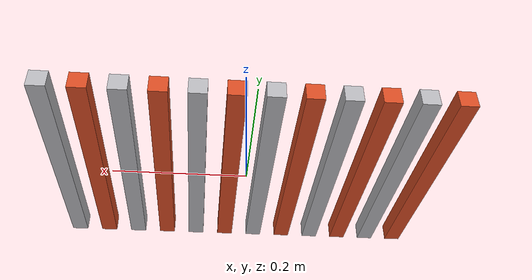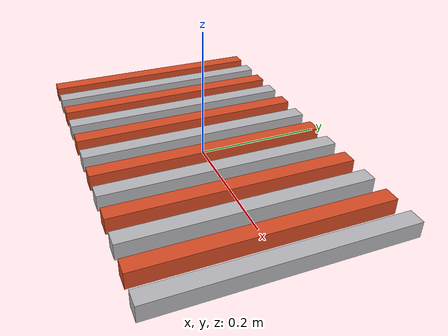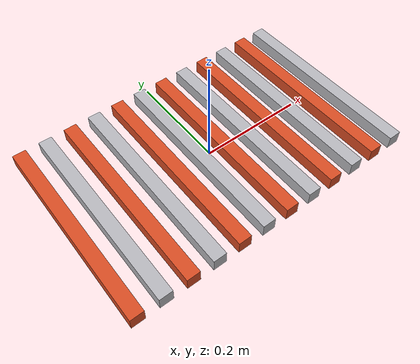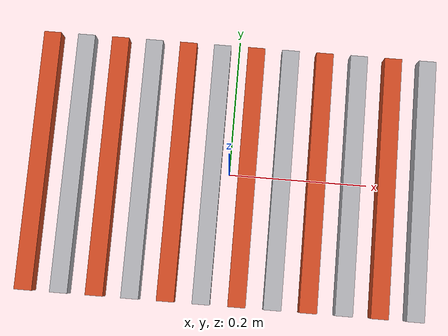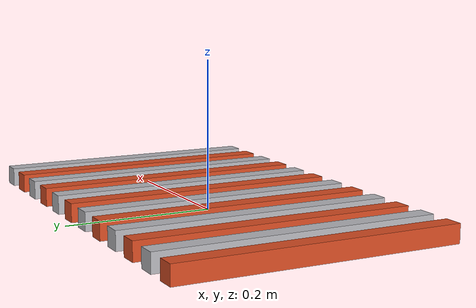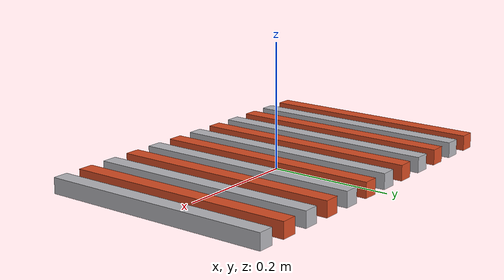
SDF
<?xml version="1.0"?>
<sdf version="1.9">
  <model name="electrode_cell">
    <static>true</static>

    <link name="anode_01">
      <pose>-0.2750 0 0.0125 0 0 0</pose>
      <collision name="collision">
        <geometry><box><size>0.0250 0.3750 0.0250</size></box></geometry>
      </collision>
      <visual name="visual">
        <geometry><box><size>0.0250 0.3750 0.0250</size></box></geometry>
        <material>
          <ambient>0.85 0.30 0.14 1</ambient>
          <diffuse>0.85 0.30 0.14 1</diffuse>
        </material>
      </visual>
    </link>

    <link name="cathode_02">
      <pose>-0.2250 0 0.0125 0 0 0</pose>
      <collision name="collision">
        <geometry><box><size>0.0250 0.3750 0.0250</size></box></geometry>
      </collision>
      <visual name="visual">
        <geometry><box><size>0.0250 0.3750 0.0250</size></box></geometry>
        <material>
          <ambient>0.72 0.72 0.74 1</ambient>
          <diffuse>0.72 0.72 0.74 1</diffuse>
        </material>
      </visual>
    </link>

    <link name="anode_03">
      <pose>-0.1750 0 0.0125 0 0 0</pose>
      <collision name="collision">
        <geometry><box><size>0.0250 0.3750 0.0250</size></box></geometry>
      </collision>
      <visual name="visual">
        <geometry><box><size>0.0250 0.3750 0.0250</size></box></geometry>
        <material>
          <ambient>0.85 0.30 0.14 1</ambient>
          <diffuse>0.85 0.30 0.14 1</diffuse>
        </material>
      </visual>
    </link>

    <link name="cathode_04">
      <pose>-0.1250 0 0.0125 0 0 0</pose>
      <collision name="collision">
        <geometry><box><size>0.0250 0.3750 0.0250</size></box></geometry>
      </collision>
      <visual name="visual">
        <geometry><box><size>0.0250 0.3750 0.0250</size></box></geometry>
        <material>
          <ambient>0.72 0.72 0.74 1</ambient>
          <diffuse>0.72 0.72 0.74 1</diffuse>
        </material>
      </visual>
    </link>

    <link name="anode_05">
      <pose>-0.0750 0 0.0125 0 0 0</pose>
      <collision name="collision">
        <geometry><box><size>0.0250 0.3750 0.0250</size></box></geometry>
      </collision>
      <visual name="visual">
        <geometry><box><size>0.0250 0.3750 0.0250</size></box></geometry>
        <material>
          <ambient>0.85 0.30 0.14 1</ambient>
          <diffuse>0.85 0.30 0.14 1</diffuse>
        </material>
      </visual>
    </link>

    <link name="cathode_06">
      <pose>-0.0250 0 0.0125 0 0 0</pose>
      <collision name="collision">
        <geometry><box><size>0.0250 0.3750 0.0250</size></box></geometry>
      </collision>
      <visual name="visual">
        <geometry><box><size>0.0250 0.3750 0.0250</size></box></geometry>
        <material>
          <ambient>0.72 0.72 0.74 1</ambient>
          <diffuse>0.72 0.72 0.74 1</diffuse>
        </material>
      </visual>
    </link>

    <link name="anode_07">
      <pose>0.0250 0 0.0125 0 0 0</pose>
      <collision name="collision">
        <geometry><box><size>0.0250 0.3750 0.0250</size></box></geometry>
      </collision>
      <visual name="visual">
        <geometry><box><size>0.0250 0.3750 0.0250</size></box></geometry>
        <material>
          <ambient>0.85 0.30 0.14 1</ambient>
          <diffuse>0.85 0.30 0.14 1</diffuse>
        </material>
      </visual>
    </link>

    <link name="cathode_08">
      <pose>0.0750 0 0.0125 0 0 0</pose>
      <collision name="collision">
        <geometry><box><size>0.0250 0.3750 0.0250</size></box></geometry>
      </collision>
      <visual name="visual">
        <geometry><box><size>0.0250 0.3750 0.0250</size></box></geometry>
        <material>
          <ambient>0.72 0.72 0.74 1</ambient>
          <diffuse>0.72 0.72 0.74 1</diffuse>
        </material>
      </visual>
    </link>

    <link name="anode_09">
      <pose>0.1250 0 0.0125 0 0 0</pose>
      <collision name="collision">
        <geometry><box><size>0.0250 0.3750 0.0250</size></box></geometry>
      </collision>
      <visual name="visual">
        <geometry><box><size>0.0250 0.3750 0.0250</size></box></geometry>
        <material>
          <ambient>0.85 0.30 0.14 1</ambient>
          <diffuse>0.85 0.30 0.14 1</diffuse>
        </material>
      </visual>
    </link>

    <link name="cathode_10">
      <pose>0.1750 0 0.0125 0 0 0</pose>
      <collision name="collision">
        <geometry><box><size>0.0250 0.3750 0.0250</size></box></geometry>
      </collision>
      <visual name="visual">
        <geometry><box><size>0.0250 0.3750 0.0250</size></box></geometry>
        <material>
          <ambient>0.72 0.72 0.74 1</ambient>
          <diffuse>0.72 0.72 0.74 1</diffuse>
        </material>
      </visual>
    </link>

    <link name="anode_11">
      <pose>0.2250 0 0.0125 0 0 0</pose>
      <collision name="collision">
        <geometry><box><size>0.0250 0.3750 0.0250</size></box></geometry>
      </collision>
      <visual name="visual">
        <geometry><box><size>0.0250 0.3750 0.0250</size></box></geometry>
        <material>
          <ambient>0.85 0.30 0.14 1</ambient>
          <diffuse>0.85 0.30 0.14 1</diffuse>
        </material>
      </visual>
    </link>

    <link name="cathode_12">
      <pose>0.2750 0 0.0125 0 0 0</pose>
      <collision name="collision">
        <geometry><box><size>0.0250 0.3750 0.0250</size></box></geometry>
      </collision>
      <visual name="visual">
        <geometry><box><size>0.0250 0.3750 0.0250</size></box></geometry>
        <material>
          <ambient>0.72 0.72 0.74 1</ambient>
          <diffuse>0.72 0.72 0.74 1</diffuse>
        </material>
      </visual>
    </link>
  </model>
</sdf>
